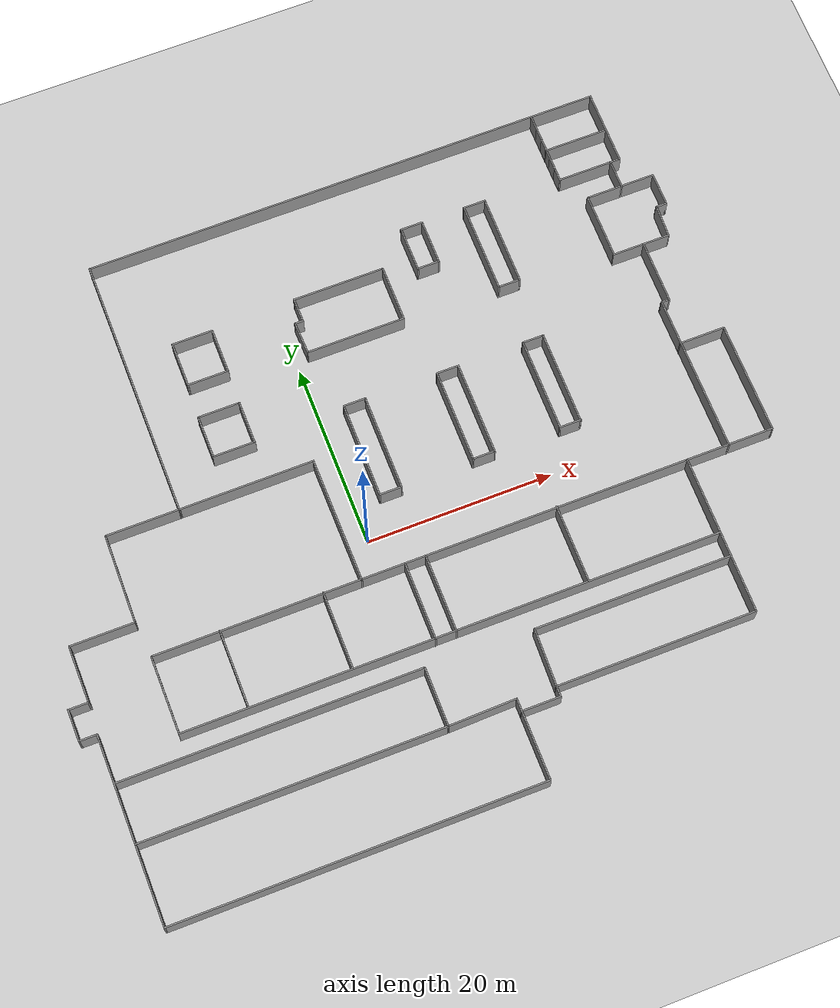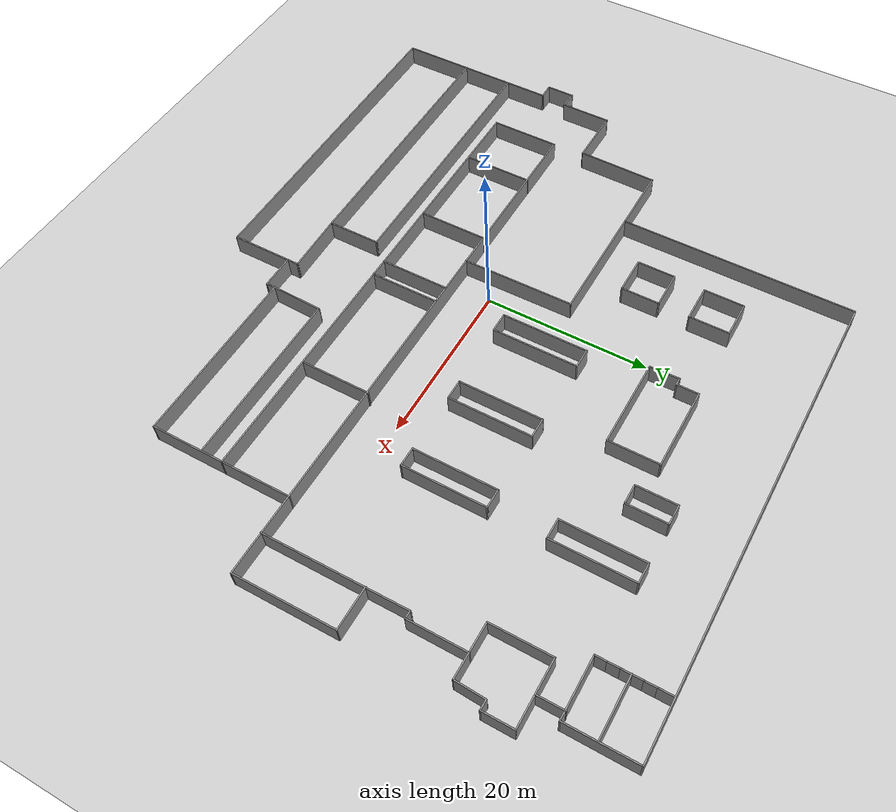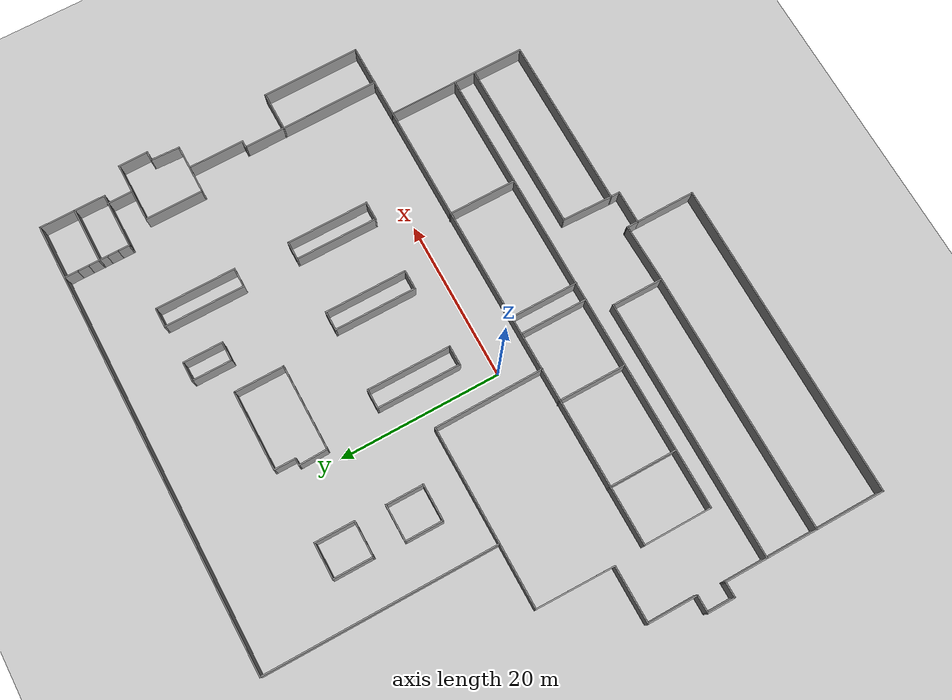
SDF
<sdf version="1.7">
 <world name="default">
  <light name="sun" type="directional">
   <pose>0 0 10 0 -0 0</pose>
   <diffuse>0.8 0.8 0.8 1</diffuse>
   <specular>0.2 0.2 0.2 1</specular>
   <attenuation>
    <range>1000</range>
    <constant>0.9</constant>
    <linear>0.01</linear>
    <quadratic>0.001</quadratic>
   </attenuation>
   <direction>-0.5 0.1 -0.9</direction>
   <spot><inner_angle>0</inner_angle><outer_angle>0</outer_angle><falloff>0</falloff></spot>
  </light>
  <model name="ground_plane">
   <static>1</static>
   <link name="link">
    <collision name="collision">
     <geometry><plane><normal>0 0 1</normal><size>100 100</size></plane></geometry>
     <surface><friction><ode><mu>100</mu><mu2>50</mu2></ode></friction></surface>
    </collision>
    <visual name="visual">
     <cast_shadows>0</cast_shadows>
     <geometry><plane><normal>0 0 1</normal><size>100 100</size></plane></geometry>
     <material>
      <script><uri>file://media/materials/scripts/gazebo.material</uri><name>Gazebo/Grey</name></script>
     </material>
    </visual>
   </link>
  </model>
  <gravity>0 0 -9.8</gravity>
  <magnetic_field>6e-06 2.3e-05 -4.2e-05</magnetic_field>
  <atmosphere type="adiabatic"/>
  <physics type="ode">
   <max_step_size>0.001</max_step_size>
   <real_time_factor>1</real_time_factor>
   <real_time_update_rate>1000</real_time_update_rate>
  </physics>
  <scene><ambient>0.4 0.4 0.4 1</ambient><background>0.7 0.7 0.7 1</background><shadows>1</shadows></scene>
  <audio><device>default</device></audio>
  <spherical_coordinates>
   <surface_model>EARTH_WGS84</surface_model>
   <latitude_deg>0</latitude_deg>
   <longitude_deg>0</longitude_deg>
   <elevation>0</elevation>
   <heading_deg>0</heading_deg>
  </spherical_coordinates>
  <model name="85_4f_sparse_wallbed">
   <pose>4.43341 4 0 0 -0 0</pose>
   <link name="Wall_0">
    <collision name="Wall_0_Collision">
     <geometry><box><size>56.75 0.15 2.5</size></box></geometry>
     <pose>0 0 1.25 0 -0 0</pose>
    </collision>
    <visual name="Wall_0_Visual">
     <pose>0 0 1.25 0 -0 0</pose>
     <geometry><box><size>56.75 0.15 2.5</size></box></geometry>
     <material>
      <script><uri>file://media/materials/scripts/gazebo.material</uri><name>Gazebo/Grey</name></script>
      <ambient>1 1 1 1</ambient>
     </material>
     <meta><layer>0</layer></meta>
    </visual>
    <pose>7.19412 33.9066 0 0 -0 0</pose>
   </link>
   <link name="Wall_1">
    <collision name="Wall_1_Collision">
     <geometry><box><size>8.25 0.15 2.5</size></box></geometry>
     <pose>0 0 1.25 0 -0 0</pose>
    </collision>
    <visual name="Wall_1_Visual">
     <pose>0 0 1.25 0 -0 0</pose>
     <geometry><box><size>8.25 0.15 2.5</size></box></geometry>
     <material>
      <script><uri>file://media/materials/scripts/gazebo.material</uri><name>Gazebo/Grey</name></script>
      <ambient>1 1 1 1</ambient>
     </material>
     <meta><layer>0</layer></meta>
    </visual>
    <pose>35.4941 29.8566 0 0 -0 -1.5708</pose>
   </link>
   <link name="Wall_100">
    <collision name="Wall_100_Collision">
     <geometry><box><size>2.5 0.15 2.5</size></box></geometry>
     <pose>0 0 1.25 0 -0 0</pose>
    </collision>
    <visual name="Wall_100_Visual">
     <pose>0 0 1.25 0 -0 0</pose>
     <geometry><box><size>2.5 0.15 2.5</size></box></geometry>
     <material>
      <script><uri>file://media/materials/scripts/gazebo.material</uri><name>Gazebo/Grey</name></script>
      <ambient>1 1 1 1</ambient>
     </material>
     <meta><layer>0</layer></meta>
    </visual>
    <pose>9.58826 9.76673 0 0 -0 3.14159</pose>
   </link>
   <link name="Wall_107">
    <collision name="Wall_107_Collision">
     <geometry><box><size>10.25 0.15 2.5</size></box></geometry>
     <pose>0 0 1.25 0 -0 0</pose>
    </collision>
    <visual name="Wall_107_Visual">
     <pose>0 0 1.25 0 -0 0</pose>
     <geometry><box><size>10.25 0.15 2.5</size></box></geometry>
     <material>
      <script><uri>file://media/materials/scripts/gazebo.material</uri><name>Gazebo/Grey</name></script>
      <ambient>1 1 1 1</ambient>
     </material>
     <meta><layer>0</layer></meta>
    </visual>
    <pose>17.9421 4.71673 0 0 -0 -1.5708</pose>
   </link>
   <link name="Wall_11">
    <collision name="Wall_11_Collision">
     <geometry><box><size>7 0.15 2.5</size></box></geometry>
     <pose>0 0 1.25 0 -0 0</pose>
    </collision>
    <visual name="Wall_11_Visual">
     <pose>0 0 1.25 0 -0 0</pose>
     <geometry><box><size>7 0.15 2.5</size></box></geometry>
     <material>
      <script><uri>file://media/materials/scripts/gazebo.material</uri><name>Gazebo/Grey</name></script>
      <ambient>1 1 1 1</ambient>
     </material>
     <meta><layer>0</layer></meta>
    </visual>
    <pose>32.0479 29.5726 0 0 -0 3.14159</pose>
   </link>
   <link name="Wall_112">
    <collision name="Wall_112_Collision">
     <geometry><box><size>2.41366 0.15 2.5</size></box></geometry>
     <pose>0 0 1.25 0 -0 0</pose>
    </collision>
    <visual name="Wall_112_Visual">
     <pose>0 0 1.25 0 -0 0</pose>
     <geometry><box><size>2.41366 0.15 2.5</size></box></geometry>
     <material>
      <script><uri>file://media/materials/scripts/gazebo.material</uri><name>Gazebo/Grey</name></script>
      <ambient>1 1 1 1</ambient>
     </material>
     <meta><layer>0</layer></meta>
    </visual>
    <pose>19.0739 -0.333267 0 0 -0 0</pose>
   </link>
   <link name="Wall_115">
    <collision name="Wall_115_Collision">
     <geometry><box><size>2.41366 0.15 2.5</size></box></geometry>
     <pose>0 0 1.25 0 -0 0</pose>
    </collision>
    <visual name="Wall_115_Visual">
     <pose>0 0 1.25 0 -0 0</pose>
     <geometry><box><size>2.41366 0.15 2.5</size></box></geometry>
     <material>
      <script><uri>file://media/materials/scripts/gazebo.material</uri><name>Gazebo/Grey</name></script>
      <ambient>1 1 1 1</ambient>
     </material>
     <meta><layer>0</layer></meta>
    </visual>
    <pose>19.0739 9.76673 0 0 -0 0</pose>
   </link>
   <link name="Wall_116">
    <collision name="Wall_116_Collision">
     <geometry><box><size>10.25 0.15 2.5</size></box></geometry>
     <pose>0 0 1.25 0 -0 0</pose>
    </collision>
    <visual name="Wall_116_Visual">
     <pose>0 0 1.25 0 -0 0</pose>
     <geometry><box><size>10.25 0.15 2.5</size></box></geometry>
     <material>
      <script><uri>file://media/materials/scripts/gazebo.material</uri><name>Gazebo/Grey</name></script>
      <ambient>1 1 1 1</ambient>
     </material>
     <meta><layer>0</layer></meta>
    </visual>
    <pose>20.1785 4.71673 0 0 -0 -1.5708</pose>
   </link>
   <link name="Wall_118">
    <collision name="Wall_118_Collision">
     <geometry><box><size>5 0.15 2.5</size></box></geometry>
     <pose>0 0 1.25 0 -0 0</pose>
    </collision>
    <visual name="Wall_118_Visual">
     <pose>0 0 1.25 0 -0 0</pose>
     <geometry><box><size>5 0.15 2.5</size></box></geometry>
     <material>
      <script><uri>file://media/materials/scripts/gazebo.material</uri><name>Gazebo/Grey</name></script>
      <ambient>1 1 1 1</ambient>
     </material>
     <meta><layer>0</layer></meta>
    </visual>
    <pose>10.8616 23.9762 0 0 -0 -1.5708</pose>
   </link>
   <link name="Wall_119">
    <collision name="Wall_119_Collision">
     <geometry><box><size>2.5 0.15 2.5</size></box></geometry>
     <pose>0 0 1.25 0 -0 0</pose>
    </collision>
    <visual name="Wall_119_Visual">
     <pose>0 0 1.25 0 -0 0</pose>
     <geometry><box><size>2.5 0.15 2.5</size></box></geometry>
     <material>
      <script><uri>file://media/materials/scripts/gazebo.material</uri><name>Gazebo/Grey</name></script>
      <ambient>1 1 1 1</ambient>
     </material>
     <meta><layer>0</layer></meta>
    </visual>
    <pose>12.0366 21.5512 0 0 -0 0</pose>
   </link>
   <link name="Wall_120">
    <collision name="Wall_120_Collision">
     <geometry><box><size>5 0.15 2.5</size></box></geometry>
     <pose>0 0 1.25 0 -0 0</pose>
    </collision>
    <visual name="Wall_120_Visual">
     <pose>0 0 1.25 0 -0 0</pose>
     <geometry><box><size>5 0.15 2.5</size></box></geometry>
     <material>
      <script><uri>file://media/materials/scripts/gazebo.material</uri><name>Gazebo/Grey</name></script>
      <ambient>1 1 1 1</ambient>
     </material>
     <meta><layer>0</layer></meta>
    </visual>
    <pose>13.2116 23.9762 0 0 -0 1.5708</pose>
   </link>
   <link name="Wall_121">
    <collision name="Wall_121_Collision">
     <geometry><box><size>2.5 0.15 2.5</size></box></geometry>
     <pose>0 0 1.25 0 -0 0</pose>
    </collision>
    <visual name="Wall_121_Visual">
     <pose>0 0 1.25 0 -0 0</pose>
     <geometry><box><size>2.5 0.15 2.5</size></box></geometry>
     <material>
      <script><uri>file://media/materials/scripts/gazebo.material</uri><name>Gazebo/Grey</name></script>
      <ambient>1 1 1 1</ambient>
     </material>
     <meta><layer>0</layer></meta>
    </visual>
    <pose>12.0366 26.4012 0 0 -0 3.14159</pose>
   </link>
   <link name="Wall_124">
    <collision name="Wall_124_Collision">
     <geometry><box><size>5 0.15 2.5</size></box></geometry>
     <pose>0 0 1.25 0 -0 0</pose>
    </collision>
    <visual name="Wall_124_Visual">
     <pose>0 0 1.25 0 -0 0</pose>
     <geometry><box><size>5 0.15 2.5</size></box></geometry>
     <material>
      <script><uri>file://media/materials/scripts/gazebo.material</uri><name>Gazebo/Grey</name></script>
      <ambient>1 1 1 1</ambient>
     </material>
     <meta><layer>0</layer></meta>
    </visual>
    <pose>-11.5083 20.2075 0 0 -0 -1.5708</pose>
   </link>
   <link name="Wall_125">
    <collision name="Wall_125_Collision">
     <geometry><box><size>4.5 0.15 2.5</size></box></geometry>
     <pose>0 0 1.25 0 -0 0</pose>
    </collision>
    <visual name="Wall_125_Visual">
     <pose>0 0 1.25 0 -0 0</pose>
     <geometry><box><size>4.5 0.15 2.5</size></box></geometry>
     <material>
      <script><uri>file://media/materials/scripts/gazebo.material</uri><name>Gazebo/Grey</name></script>
      <ambient>1 1 1 1</ambient>
     </material>
     <meta><layer>0</layer></meta>
    </visual>
    <pose>-13.6833 17.7825 0 0 -0 3.14159</pose>
   </link>
   <link name="Wall_127">
    <collision name="Wall_127_Collision">
     <geometry><box><size>5 0.15 2.5</size></box></geometry>
     <pose>0 0 1.25 0 -0 0</pose>
    </collision>
    <visual name="Wall_127_Visual">
     <pose>0 0 1.25 0 -0 0</pose>
     <geometry><box><size>5 0.15 2.5</size></box></geometry>
     <material>
      <script><uri>file://media/materials/scripts/gazebo.material</uri><name>Gazebo/Grey</name></script>
      <ambient>1 1 1 1</ambient>
     </material>
     <meta><layer>0</layer></meta>
    </visual>
    <pose>-15.8583 20.2075 0 0 -0 1.5708</pose>
   </link>
   <link name="Wall_128">
    <collision name="Wall_128_Collision">
     <geometry><box><size>4.5 0.15 2.5</size></box></geometry>
     <pose>0 0 1.25 0 -0 0</pose>
    </collision>
    <visual name="Wall_128_Visual">
     <pose>0 0 1.25 0 -0 0</pose>
     <geometry><box><size>4.5 0.15 2.5</size></box></geometry>
     <material>
      <script><uri>file://media/materials/scripts/gazebo.material</uri><name>Gazebo/Grey</name></script>
      <ambient>1 1 1 1</ambient>
     </material>
     <meta><layer>0</layer></meta>
    </visual>
    <pose>-13.6833 22.6325 0 0 -0 0</pose>
   </link>
   <link name="Wall_13">
    <collision name="Wall_13_Collision">
     <geometry><box><size>28.7814 0.15 2.5</size></box></geometry>
     <pose>0 0 1.25 0 -0 0</pose>
    </collision>
    <visual name="Wall_13_Visual">
     <pose>0 0 1.25 0 -0 0</pose>
     <geometry><box><size>28.7814 0.15 2.5</size></box></geometry>
     <material>
      <script><uri>file://media/materials/scripts/gazebo.material</uri><name>Gazebo/Grey</name></script>
      <ambient>1 1 1 1</ambient>
     </material>
     <meta><layer>0</layer></meta>
    </visual>
    <pose>-21.1216 19.591 0 0 -0 -1.57189</pose>
   </link>
   <link name="Wall_130">
    <collision name="Wall_130_Collision">
     <geometry><box><size>4.75 0.15 2.5</size></box></geometry>
     <pose>0 0 1.25 0 -0 0</pose>
    </collision>
    <visual name="Wall_130_Visual">
     <pose>0 0 1.25 0 -0 0</pose>
     <geometry><box><size>4.75 0.15 2.5</size></box></geometry>
     <material>
      <script><uri>file://media/materials/scripts/gazebo.material</uri><name>Gazebo/Grey</name></script>
      <ambient>1 1 1 1</ambient>
     </material>
     <meta><layer>0</layer></meta>
    </visual>
    <pose>-16.0563 11.7124 0 0 -0 -1.5708</pose>
   </link>
   <link name="Wall_131">
    <collision name="Wall_131_Collision">
     <geometry><box><size>4.6186 0.15 2.5</size></box></geometry>
     <pose>0 0 1.25 0 -0 0</pose>
    </collision>
    <visual name="Wall_131_Visual">
     <pose>0 0 1.25 0 -0 0</pose>
     <geometry><box><size>4.6186 0.15 2.5</size></box></geometry>
     <material>
      <script><uri>file://media/materials/scripts/gazebo.material</uri><name>Gazebo/Grey</name></script>
      <ambient>1 1 1 1</ambient>
     </material>
     <meta><layer>0</layer></meta>
    </visual>
    <pose>-13.822 9.41236 0 0 -0 0</pose>
   </link>
   <link name="Wall_132">
    <collision name="Wall_132_Collision">
     <geometry><box><size>4.75 0.15 2.5</size></box></geometry>
     <pose>0 0 1.25 0 -0 0</pose>
    </collision>
    <visual name="Wall_132_Visual">
     <pose>0 0 1.25 0 -0 0</pose>
     <geometry><box><size>4.75 0.15 2.5</size></box></geometry>
     <material>
      <script><uri>file://media/materials/scripts/gazebo.material</uri><name>Gazebo/Grey</name></script>
      <ambient>1 1 1 1</ambient>
     </material>
     <meta><layer>0</layer></meta>
    </visual>
    <pose>-11.6114 11.7124 0 0 -0 1.5708</pose>
   </link>
   <link name="Wall_133">
    <collision name="Wall_133_Collision">
     <geometry><box><size>4.6186 0.15 2.5</size></box></geometry>
     <pose>0 0 1.25 0 -0 0</pose>
    </collision>
    <visual name="Wall_133_Visual">
     <pose>0 0 1.25 0 -0 0</pose>
     <geometry><box><size>4.6186 0.15 2.5</size></box></geometry>
     <material>
      <script><uri>file://media/materials/scripts/gazebo.material</uri><name>Gazebo/Grey</name></script>
      <ambient>1 1 1 1</ambient>
     </material>
     <meta><layer>0</layer></meta>
    </visual>
    <pose>-13.822 14.0124 0 0 -0 3.14159</pose>
   </link>
   <link name="Wall_135">
    <collision name="Wall_135_Collision">
     <geometry><box><size>2.5 0.15 2.5</size></box></geometry>
     <pose>0 0 1.25 0 -0 0</pose>
    </collision>
    <visual name="Wall_135_Visual">
     <pose>0 0 1.25 0 -0 0</pose>
     <geometry><box><size>2.5 0.15 2.5</size></box></geometry>
     <material>
      <script><uri>file://media/materials/scripts/gazebo.material</uri><name>Gazebo/Grey</name></script>
      <ambient>1 1 1 1</ambient>
     </material>
     <meta><layer>0</layer></meta>
    </visual>
    <pose>-0.602463 -0.525696 0 0 -0 0</pose>
   </link>
   <link name="Wall_136">
    <collision name="Wall_136_Collision">
     <geometry><box><size>10.5 0.15 2.5</size></box></geometry>
     <pose>0 0 1.25 0 -0 0</pose>
    </collision>
    <visual name="Wall_136_Visual">
     <pose>0 0 1.25 0 -0 0</pose>
     <geometry><box><size>10.5 0.15 2.5</size></box></geometry>
     <material>
      <script><uri>file://media/materials/scripts/gazebo.material</uri><name>Gazebo/Grey</name></script>
      <ambient>1 1 1 1</ambient>
     </material>
     <meta><layer>0</layer></meta>
    </visual>
    <pose>0.572537 4.6493 0 0 -0 1.5708</pose>
   </link>
   <link name="Wall_137">
    <collision name="Wall_137_Collision">
     <geometry><box><size>2.5 0.15 2.5</size></box></geometry>
     <pose>0 0 1.25 0 -0 0</pose>
    </collision>
    <visual name="Wall_137_Visual">
     <pose>0 0 1.25 0 -0 0</pose>
     <geometry><box><size>2.5 0.15 2.5</size></box></geometry>
     <material>
      <script><uri>file://media/materials/scripts/gazebo.material</uri><name>Gazebo/Grey</name></script>
      <ambient>1 1 1 1</ambient>
     </material>
     <meta><layer>0</layer></meta>
    </visual>
    <pose>-0.602463 9.82431 0 0 -0 3.14159</pose>
   </link>
   <link name="Wall_138">
    <collision name="Wall_138_Collision">
     <geometry><box><size>10.5 0.15 2.5</size></box></geometry>
     <pose>0 0 1.25 0 -0 0</pose>
    </collision>
    <visual name="Wall_138_Visual">
     <pose>0 0 1.25 0 -0 0</pose>
     <geometry><box><size>10.5 0.15 2.5</size></box></geometry>
     <material>
      <script><uri>file://media/materials/scripts/gazebo.material</uri><name>Gazebo/Grey</name></script>
      <ambient>1 1 1 1</ambient>
     </material>
     <meta><layer>0</layer></meta>
    </visual>
    <pose>-1.77746 4.6493 0 0 -0 -1.5708</pose>
   </link>
   <link name="Wall_14">
    <collision name="Wall_14_Collision">
     <geometry><box><size>14.5314 0.15 2.5</size></box></geometry>
     <pose>0 0 1.25 0 -0 0</pose>
    </collision>
    <visual name="Wall_14_Visual">
     <pose>0 0 1.25 0 -0 0</pose>
     <geometry><box><size>14.5314 0.15 2.5</size></box></geometry>
     <material>
      <script><uri>file://media/materials/scripts/gazebo.material</uri><name>Gazebo/Grey</name></script>
      <ambient>1 1 1 1</ambient>
     </material>
     <meta><layer>0</layer></meta>
    </visual>
    <pose>-13.9466 5.29096 0 0 -0 0.002181</pose>
   </link>
   <link name="Wall_15">
    <collision name="Wall_15_Collision">
     <geometry><box><size>13.7495 0.15 2.5</size></box></geometry>
     <pose>0 0 1.25 0 -0 0</pose>
    </collision>
    <visual name="Wall_15_Visual">
     <pose>0 0 1.25 0 -0 0</pose>
     <geometry><box><size>13.7495 0.15 2.5</size></box></geometry>
     <material>
      <script><uri>file://media/materials/scripts/gazebo.material</uri><name>Gazebo/Grey</name></script>
      <ambient>1 1 1 1</ambient>
     </material>
     <meta><layer>0</layer></meta>
    </visual>
    <pose>-6.70238 -1.49288 0 0 -0 -1.56293</pose>
   </link>
   <link name="Wall_16">
    <collision name="Wall_16_Collision">
     <geometry><box><size>40 0.15 2.5</size></box></geometry>
     <pose>0 0 1.25 0 -0 0</pose>
    </collision>
    <visual name="Wall_16_Visual">
     <pose>0 0 1.25 0 -0 0</pose>
     <geometry><box><size>40 0.15 2.5</size></box></geometry>
     <material>
      <script><uri>file://media/materials/scripts/gazebo.material</uri><name>Gazebo/Grey</name></script>
      <ambient>1 1 1 1</ambient>
     </material>
     <meta><layer>0</layer></meta>
    </visual>
    <pose>13.2761 -8.25672 0 0 -0 0</pose>
   </link>
   <link name="Wall_17">
    <collision name="Wall_17_Collision">
     <geometry><box><size>17.2494 0.15 2.5</size></box></geometry>
     <pose>0 0 1.25 0 -0 0</pose>
    </collision>
    <visual name="Wall_17_Visual">
     <pose>0 0 1.25 0 -0 0</pose>
     <geometry><box><size>17.2494 0.15 2.5</size></box></geometry>
     <material>
      <script><uri>file://media/materials/scripts/gazebo.material</uri><name>Gazebo/Grey</name></script>
      <ambient>1 1 1 1</ambient>
     </material>
     <meta><layer>0</layer></meta>
    </visual>
    <pose>33.1476 0.257124 0 0 -0 1.57705</pose>
   </link>
   <link name="Wall_18">
    <collision name="Wall_18_Collision">
     <geometry><box><size>1 0.15 2.5</size></box></geometry>
     <pose>0 0 1.25 0 -0 0</pose>
    </collision>
    <visual name="Wall_18_Visual">
     <pose>0 0 1.25 0 -0 0</pose>
     <geometry><box><size>1 0.15 2.5</size></box></geometry>
     <material>
      <script><uri>file://media/materials/scripts/gazebo.material</uri><name>Gazebo/Grey</name></script>
      <ambient>1 1 1 1</ambient>
     </material>
     <meta><layer>0</layer></meta>
    </visual>
    <pose>33.5191 8.80664 0 0 -0 0</pose>
   </link>
   <link name="Wall_19">
    <collision name="Wall_19_Collision">
     <geometry><box><size>7 0.15 2.5</size></box></geometry>
     <pose>0 0 1.25 0 -0 0</pose>
    </collision>
    <visual name="Wall_19_Visual">
     <pose>0 0 1.25 0 -0 0</pose>
     <geometry><box><size>7 0.15 2.5</size></box></geometry>
     <material>
      <script><uri>file://media/materials/scripts/gazebo.material</uri><name>Gazebo/Grey</name></script>
      <ambient>1 1 1 1</ambient>
     </material>
     <meta><layer>0</layer></meta>
    </visual>
    <pose>33.9441 12.2316 0 0 -0 1.5708</pose>
   </link>
   <link name="Wall_20">
    <collision name="Wall_20_Collision">
     <geometry><box><size>3.5 0.15 2.5</size></box></geometry>
     <pose>0 0 1.25 0 -0 0</pose>
    </collision>
    <visual name="Wall_20_Visual">
     <pose>0 0 1.25 0 -0 0</pose>
     <geometry><box><size>3.5 0.15 2.5</size></box></geometry>
     <material>
      <script><uri>file://media/materials/scripts/gazebo.material</uri><name>Gazebo/Grey</name></script>
      <ambient>1 1 1 1</ambient>
     </material>
     <meta><layer>0</layer></meta>
    </visual>
    <pose>32.2691 15.6566 0 0 -0 3.14159</pose>
   </link>
   <link name="Wall_21">
    <collision name="Wall_21_Collision">
     <geometry><box><size>7.26773 0.15 2.5</size></box></geometry>
     <pose>0 0 1.25 0 -0 0</pose>
    </collision>
    <visual name="Wall_21_Visual">
     <pose>0 0 1.25 0 -0 0</pose>
     <geometry><box><size>7.26773 0.15 2.5</size></box></geometry>
     <material>
      <script><uri>file://media/materials/scripts/gazebo.material</uri><name>Gazebo/Grey</name></script>
      <ambient>1 1 1 1</ambient>
     </material>
     <meta><layer>0</layer></meta>
    </visual>
    <pose>30.5941 19.2155 0 0 -0 1.5708</pose>
   </link>
   <link name="Wall_22">
    <collision name="Wall_22_Collision">
     <geometry><box><size>4 0.15 2.5</size></box></geometry>
     <pose>0 0 1.25 0 -0 0</pose>
    </collision>
    <visual name="Wall_22_Visual">
     <pose>0 0 1.25 0 -0 0</pose>
     <geometry><box><size>4 0.15 2.5</size></box></geometry>
     <material>
      <script><uri>file://media/materials/scripts/gazebo.material</uri><name>Gazebo/Grey</name></script>
      <ambient>1 1 1 1</ambient>
     </material>
     <meta><layer>0</layer></meta>
    </visual>
    <pose>32.5191 22.7744 0 0 -0 0</pose>
   </link>
   <link name="Wall_25">
    <collision name="Wall_25_Collision">
     <geometry><box><size>3.23227 0.15 2.5</size></box></geometry>
     <pose>0 0 1.25 0 -0 0</pose>
    </collision>
    <visual name="Wall_25_Visual">
     <pose>0 0 1.25 0 -0 0</pose>
     <geometry><box><size>3.23227 0.15 2.5</size></box></geometry>
     <material>
      <script><uri>file://media/materials/scripts/gazebo.material</uri><name>Gazebo/Grey</name></script>
      <ambient>1 1 1 1</ambient>
     </material>
     <meta><layer>0</layer></meta>
    </visual>
    <pose>34.4441 24.3155 0 0 -0 1.5708</pose>
   </link>
   <link name="Wall_27">
    <collision name="Wall_27_Collision">
     <geometry><box><size>3 0.15 2.5</size></box></geometry>
     <pose>0 0 1.25 0 -0 0</pose>
    </collision>
    <visual name="Wall_27_Visual">
     <pose>0 0 1.25 0 -0 0</pose>
     <geometry><box><size>3 0.15 2.5</size></box></geometry>
     <material>
      <script><uri>file://media/materials/scripts/gazebo.material</uri><name>Gazebo/Grey</name></script>
      <ambient>1 1 1 1</ambient>
     </material>
     <meta><layer>0</layer></meta>
    </visual>
    <pose>35.3691 15.6566 0 0 -0 0</pose>
   </link>
   <link name="Wall_35">
    <collision name="Wall_35_Collision">
     <geometry><box><size>3.75 0.15 2.5</size></box></geometry>
     <pose>0 0 1.25 0 -0 0</pose>
    </collision>
    <visual name="Wall_35_Visual">
     <pose>0 0 1.25 0 -0 0</pose>
     <geometry><box><size>3.75 0.15 2.5</size></box></geometry>
     <material>
      <script><uri>file://media/materials/scripts/gazebo.material</uri><name>Gazebo/Grey</name></script>
      <ambient>1 1 1 1</ambient>
     </material>
     <meta><layer>0</layer></meta>
    </visual>
    <pose>36.2441 22.7744 0 0 -0 0</pose>
   </link>
   <link name="Wall_36">
    <collision name="Wall_36_Collision">
     <geometry><box><size>3.75 0.15 2.5</size></box></geometry>
     <pose>0 0 1.25 0 -0 0</pose>
    </collision>
    <visual name="Wall_36_Visual">
     <pose>0 0 1.25 0 -0 0</pose>
     <geometry><box><size>3.75 0.15 2.5</size></box></geometry>
     <material>
      <script><uri>file://media/materials/scripts/gazebo.material</uri><name>Gazebo/Grey</name></script>
      <ambient>1 1 1 1</ambient>
     </material>
     <meta><layer>0</layer></meta>
    </visual>
    <pose>38.0441 20.9744 0 0 -0 -1.5708</pose>
   </link>
   <link name="Wall_37">
    <collision name="Wall_37_Collision">
     <geometry><box><size>1.25 0.15 2.5</size></box></geometry>
     <pose>0 0 1.25 0 -0 0</pose>
    </collision>
    <visual name="Wall_37_Visual">
     <pose>0 0 1.25 0 -0 0</pose>
     <geometry><box><size>1.25 0.15 2.5</size></box></geometry>
     <material>
      <script><uri>file://media/materials/scripts/gazebo.material</uri><name>Gazebo/Grey</name></script>
      <ambient>1 1 1 1</ambient>
     </material>
     <meta><layer>0</layer></meta>
    </visual>
    <pose>37.4941 19.1744 0 0 -0 3.14159</pose>
   </link>
   <link name="Wall_38">
    <collision name="Wall_38_Collision">
     <geometry><box><size>3.67093 0.15 2.5</size></box></geometry>
     <pose>0 0 1.25 0 -0 0</pose>
    </collision>
    <visual name="Wall_38_Visual">
     <pose>0 0 1.25 0 -0 0</pose>
     <geometry><box><size>3.67093 0.15 2.5</size></box></geometry>
     <material>
      <script><uri>file://media/materials/scripts/gazebo.material</uri><name>Gazebo/Grey</name></script>
      <ambient>1 1 1 1</ambient>
     </material>
     <meta><layer>0</layer></meta>
    </visual>
    <pose>36.8691 17.4155 0 0 -0 -1.61341</pose>
   </link>
   <link name="Wall_4">
    <collision name="Wall_4_Collision">
     <geometry><box><size>7 0.15 2.5</size></box></geometry>
     <pose>0 0 1.25 0 -0 0</pose>
    </collision>
    <visual name="Wall_4_Visual">
     <pose>0 0 1.25 0 -0 0</pose>
     <geometry><box><size>7 0.15 2.5</size></box></geometry>
     <material>
      <script><uri>file://media/materials/scripts/gazebo.material</uri><name>Gazebo/Grey</name></script>
      <ambient>1 1 1 1</ambient>
     </material>
     <meta><layer>0</layer></meta>
    </visual>
    <pose>32.0691 25.8066 0 0 -0 3.14159</pose>
   </link>
   <link name="Wall_40">
    <collision name="Wall_40_Collision">
     <geometry><box><size>5 0.15 2.5</size></box></geometry>
     <pose>0 0 1.25 0 -0 0</pose>
    </collision>
    <visual name="Wall_40_Visual">
     <pose>0 0 1.25 0 -0 0</pose>
     <geometry><box><size>5 0.15 2.5</size></box></geometry>
     <material>
      <script><uri>file://media/materials/scripts/gazebo.material</uri><name>Gazebo/Grey</name></script>
      <ambient>1 1 1 1</ambient>
     </material>
     <meta><layer>0</layer></meta>
    </visual>
    <pose>35.5175 3.82548 0 0 -0 0</pose>
   </link>
   <link name="Wall_41">
    <collision name="Wall_41_Collision">
     <geometry><box><size>12.2274 0.15 2.5</size></box></geometry>
     <pose>0 0 1.25 0 -0 0</pose>
    </collision>
    <visual name="Wall_41_Visual">
     <pose>0 0 1.25 0 -0 0</pose>
     <geometry><box><size>12.2274 0.15 2.5</size></box></geometry>
     <material>
      <script><uri>file://media/materials/scripts/gazebo.material</uri><name>Gazebo/Grey</name></script>
      <ambient>1 1 1 1</ambient>
     </material>
     <meta><layer>0</layer></meta>
    </visual>
    <pose>37.9868 -2.21306 0 0 -0 -1.56346</pose>
   </link>
   <link name="Wall_42">
    <collision name="Wall_42_Collision">
     <geometry><box><size>5 0.15 2.5</size></box></geometry>
     <pose>0 0 1.25 0 -0 0</pose>
    </collision>
    <visual name="Wall_42_Visual">
     <pose>0 0 1.25 0 -0 0</pose>
     <geometry><box><size>5 0.15 2.5</size></box></geometry>
     <material>
      <script><uri>file://media/materials/scripts/gazebo.material</uri><name>Gazebo/Grey</name></script>
      <ambient>1 1 1 1</ambient>
     </material>
     <meta><layer>0</layer></meta>
    </visual>
    <pose>35.6239 -8.25159 0 0 -0 3.14159</pose>
   </link>
   <link name="Wall_45">
    <collision name="Wall_45_Collision">
     <geometry><box><size>22.25 0.15 2.5</size></box></geometry>
     <pose>0 0 1.25 0 -0 0</pose>
    </collision>
    <visual name="Wall_45_Visual">
     <pose>0 0 1.25 0 -0 0</pose>
     <geometry><box><size>22.25 0.15 2.5</size></box></geometry>
     <material>
      <script><uri>file://media/materials/scripts/gazebo.material</uri><name>Gazebo/Grey</name></script>
      <ambient>1 1 1 1</ambient>
     </material>
     <meta><layer>0</layer></meta>
    </visual>
    <pose>-17.6989 -8.25672 0 0 -0 3.14159</pose>
   </link>
   <link name="Wall_46">
    <collision name="Wall_46_Collision">
     <geometry><box><size>8.5 0.15 2.5</size></box></geometry>
     <pose>0 0 1.25 0 -0 0</pose>
    </collision>
    <visual name="Wall_46_Visual">
     <pose>0 0 1.25 0 -0 0</pose>
     <geometry><box><size>8.5 0.15 2.5</size></box></geometry>
     <material>
      <script><uri>file://media/materials/scripts/gazebo.material</uri><name>Gazebo/Grey</name></script>
      <ambient>1 1 1 1</ambient>
     </material>
     <meta><layer>0</layer></meta>
    </visual>
    <pose>-28.7489 -12.4317 0 0 -0 -1.5708</pose>
   </link>
   <link name="Wall_47">
    <collision name="Wall_47_Collision">
     <geometry><box><size>57.5 0.15 2.5</size></box></geometry>
     <pose>0 0 1.25 0 -0 0</pose>
    </collision>
    <visual name="Wall_47_Visual">
     <pose>0 0 1.25 0 -0 0</pose>
     <geometry><box><size>57.5 0.15 2.5</size></box></geometry>
     <material>
      <script><uri>file://media/materials/scripts/gazebo.material</uri><name>Gazebo/Grey</name></script>
      <ambient>1 1 1 1</ambient>
     </material>
     <meta><layer>0</layer></meta>
    </visual>
    <pose>-0.073876 -16.6067 0 0 -0 0</pose>
   </link>
   <link name="Wall_48">
    <collision name="Wall_48_Collision">
     <geometry><box><size>8.5 0.15 2.5</size></box></geometry>
     <pose>0 0 1.25 0 -0 0</pose>
    </collision>
    <visual name="Wall_48_Visual">
     <pose>0 0 1.25 0 -0 0</pose>
     <geometry><box><size>8.5 0.15 2.5</size></box></geometry>
     <material>
      <script><uri>file://media/materials/scripts/gazebo.material</uri><name>Gazebo/Grey</name></script>
      <ambient>1 1 1 1</ambient>
     </material>
     <meta><layer>0</layer></meta>
    </visual>
    <pose>28.6011 -12.4317 0 0 -0 1.5708</pose>
   </link>
   <link name="Wall_5">
    <collision name="Wall_5_Collision">
     <geometry><box><size>1.5 0.15 2.5</size></box></geometry>
     <pose>0 0 1.25 0 -0 0</pose>
    </collision>
    <visual name="Wall_5_Visual">
     <pose>0 0 1.25 0 -0 0</pose>
     <geometry><box><size>1.5 0.15 2.5</size></box></geometry>
     <material>
      <script><uri>file://media/materials/scripts/gazebo.material</uri><name>Gazebo/Grey</name></script>
      <ambient>1 1 1 1</ambient>
     </material>
     <meta><layer>0</layer></meta>
    </visual>
    <pose>28.6441 26.4816 0 0 -0 1.5708</pose>
   </link>
   <link name="Wall_50">
    <collision name="Wall_50_Collision">
     <geometry><box><size>8.5 0.15 2.5</size></box></geometry>
     <pose>0 0 1.25 0 -0 0</pose>
    </collision>
    <visual name="Wall_50_Visual">
     <pose>0 0 1.25 0 -0 0</pose>
     <geometry><box><size>8.5 0.15 2.5</size></box></geometry>
     <material>
      <script><uri>file://media/materials/scripts/gazebo.material</uri><name>Gazebo/Grey</name></script>
      <ambient>1 1 1 1</ambient>
     </material>
     <meta><layer>0</layer></meta>
    </visual>
    <pose>-2.02252 -12.4746 0 0 -0 1.5708</pose>
   </link>
   <link name="Wall_52">
    <collision name="Wall_52_Collision">
     <geometry><box><size>8.5 0.15 2.5</size></box></geometry>
     <pose>0 0 1.25 0 -0 0</pose>
    </collision>
    <visual name="Wall_52_Visual">
     <pose>0 0 1.25 0 -0 0</pose>
     <geometry><box><size>8.5 0.15 2.5</size></box></geometry>
     <material>
      <script><uri>file://media/materials/scripts/gazebo.material</uri><name>Gazebo/Grey</name></script>
      <ambient>1 1 1 1</ambient>
     </material>
     <meta><layer>0</layer></meta>
    </visual>
    <pose>0.18892 -12.4746 0 0 -0 1.5708</pose>
   </link>
   <link name="Wall_54">
    <collision name="Wall_54_Collision">
     <geometry><box><size>8.5 0.15 2.5</size></box></geometry>
     <pose>0 0 1.25 0 -0 0</pose>
    </collision>
    <visual name="Wall_54_Visual">
     <pose>0 0 1.25 0 -0 0</pose>
     <geometry><box><size>8.5 0.15 2.5</size></box></geometry>
     <material>
      <script><uri>file://media/materials/scripts/gazebo.material</uri><name>Gazebo/Grey</name></script>
      <ambient>1 1 1 1</ambient>
     </material>
     <meta><layer>0</layer></meta>
    </visual>
    <pose>14.3492 -12.3319 0 0 -0 1.5708</pose>
   </link>
   <link name="Wall_56">
    <collision name="Wall_56_Collision">
     <geometry><box><size>8.5 0.15 2.5</size></box></geometry>
     <pose>0 0 1.25 0 -0 0</pose>
    </collision>
    <visual name="Wall_56_Visual">
     <pose>0 0 1.25 0 -0 0</pose>
     <geometry><box><size>8.5 0.15 2.5</size></box></geometry>
     <material>
      <script><uri>file://media/materials/scripts/gazebo.material</uri><name>Gazebo/Grey</name></script>
      <ambient>1 1 1 1</ambient>
     </material>
     <meta><layer>0</layer></meta>
    </visual>
    <pose>-21.5688 -12.4069 0 0 -0 -1.5708</pose>
   </link>
   <link name="Wall_58">
    <collision name="Wall_58_Collision">
     <geometry><box><size>8.5 0.15 2.5</size></box></geometry>
     <pose>0 0 1.25 0 -0 0</pose>
    </collision>
    <visual name="Wall_58_Visual">
     <pose>0 0 1.25 0 -0 0</pose>
     <geometry><box><size>8.5 0.15 2.5</size></box></geometry>
     <material>
      <script><uri>file://media/materials/scripts/gazebo.material</uri><name>Gazebo/Grey</name></script>
      <ambient>1 1 1 1</ambient>
     </material>
     <meta><layer>0</layer></meta>
    </visual>
    <pose>-10.6899 -12.3712 0 0 -0 -1.5708</pose>
   </link>
   <link name="Wall_6">
    <collision name="Wall_6_Collision">
     <geometry><box><size>1.5 0.15 2.5</size></box></geometry>
     <pose>0 0 1.25 0 -0 0</pose>
    </collision>
    <visual name="Wall_6_Visual">
     <pose>0 0 1.25 0 -0 0</pose>
     <geometry><box><size>1.5 0.15 2.5</size></box></geometry>
     <material>
      <script><uri>file://media/materials/scripts/gazebo.material</uri><name>Gazebo/Grey</name></script>
      <ambient>1 1 1 1</ambient>
     </material>
     <meta><layer>0</layer></meta>
    </visual>
    <pose>28.6441 27.8316 0 0 -0 1.5708</pose>
   </link>
   <link name="Wall_60">
    <collision name="Wall_60_Collision">
     <geometry><box><size>9 0.15 2.5</size></box></geometry>
     <pose>0 0 1.25 0 -0 0</pose>
    </collision>
    <visual name="Wall_60_Visual">
     <pose>0 0 1.25 0 -0 0</pose>
     <geometry><box><size>9 0.15 2.5</size></box></geometry>
     <material>
      <script><uri>file://media/materials/scripts/gazebo.material</uri><name>Gazebo/Grey</name></script>
      <ambient>1 1 1 1</ambient>
     </material>
     <meta><layer>0</layer></meta>
    </visual>
    <pose>28.6011 -21.0317 0 0 -0 -1.5708</pose>
   </link>
   <link name="Wall_61">
    <collision name="Wall_61_Collision">
     <geometry><box><size>21.5 0.15 2.5</size></box></geometry>
     <pose>0 0 1.25 0 -0 0</pose>
    </collision>
    <visual name="Wall_61_Visual">
     <pose>0 0 1.25 0 -0 0</pose>
     <geometry><box><size>21.5 0.15 2.5</size></box></geometry>
     <material>
      <script><uri>file://media/materials/scripts/gazebo.material</uri><name>Gazebo/Grey</name></script>
      <ambient>1 1 1 1</ambient>
     </material>
     <meta><layer>0</layer></meta>
    </visual>
    <pose>17.9261 -25.4567 0 0 -0 3.14159</pose>
   </link>
   <link name="Wall_62">
    <collision name="Wall_62_Collision">
     <geometry><box><size>1.25 0.15 2.5</size></box></geometry>
     <pose>0 0 1.25 0 -0 0</pose>
    </collision>
    <visual name="Wall_62_Visual">
     <pose>0 0 1.25 0 -0 0</pose>
     <geometry><box><size>1.25 0.15 2.5</size></box></geometry>
     <material>
      <script><uri>file://media/materials/scripts/gazebo.material</uri><name>Gazebo/Grey</name></script>
      <ambient>1 1 1 1</ambient>
     </material>
     <meta><layer>0</layer></meta>
    </visual>
    <pose>7.25112 -26.0067 0 0 -0 -1.5708</pose>
   </link>
   <link name="Wall_63">
    <collision name="Wall_63_Collision">
     <geometry><box><size>4.25 0.15 2.5</size></box></geometry>
     <pose>0 0 1.25 0 -0 0</pose>
    </collision>
    <visual name="Wall_63_Visual">
     <pose>0 0 1.25 0 -0 0</pose>
     <geometry><box><size>4.25 0.15 2.5</size></box></geometry>
     <material>
      <script><uri>file://media/materials/scripts/gazebo.material</uri><name>Gazebo/Grey</name></script>
      <ambient>1 1 1 1</ambient>
     </material>
     <meta><layer>0</layer></meta>
    </visual>
    <pose>5.20112 -26.5567 0 0 -0 3.14159</pose>
   </link>
   <link name="Wall_64">
    <collision name="Wall_64_Collision">
     <geometry><box><size>7.5 0.15 2.5</size></box></geometry>
     <pose>0 0 1.25 0 -0 0</pose>
    </collision>
    <visual name="Wall_64_Visual">
     <pose>0 0 1.25 0 -0 0</pose>
     <geometry><box><size>7.5 0.15 2.5</size></box></geometry>
     <material>
      <script><uri>file://media/materials/scripts/gazebo.material</uri><name>Gazebo/Grey</name></script>
      <ambient>1 1 1 1</ambient>
     </material>
     <meta><layer>0</layer></meta>
    </visual>
    <pose>3.15112 -30.2317 0 0 -0 -1.5708</pose>
   </link>
   <link name="Wall_65">
    <collision name="Wall_65_Collision">
     <geometry><box><size>39.5 0.15 2.5</size></box></geometry>
     <pose>0 0 1.25 0 -0 0</pose>
    </collision>
    <visual name="Wall_65_Visual">
     <pose>0 0 1.25 0 -0 0</pose>
     <geometry><box><size>39.5 0.15 2.5</size></box></geometry>
     <material>
      <script><uri>file://media/materials/scripts/gazebo.material</uri><name>Gazebo/Grey</name></script>
      <ambient>1 1 1 1</ambient>
     </material>
     <meta><layer>0</layer></meta>
    </visual>
    <pose>-16.5239 -33.9067 0 0 -0 3.14159</pose>
   </link>
   <link name="Wall_66">
    <collision name="Wall_66_Collision">
     <geometry><box><size>20.25 0.15 2.5</size></box></geometry>
     <pose>0 0 1.25 0 -0 0</pose>
    </collision>
    <visual name="Wall_66_Visual">
     <pose>0 0 1.25 0 -0 0</pose>
     <geometry><box><size>20.25 0.15 2.5</size></box></geometry>
     <material>
      <script><uri>file://media/materials/scripts/gazebo.material</uri><name>Gazebo/Grey</name></script>
      <ambient>1 1 1 1</ambient>
     </material>
     <meta><layer>0</layer></meta>
    </visual>
    <pose>-36.1989 -23.8567 0 0 -0 1.5708</pose>
   </link>
   <link name="Wall_67">
    <collision name="Wall_67_Collision">
     <geometry><box><size>2 0.15 2.5</size></box></geometry>
     <pose>0 0 1.25 0 -0 0</pose>
    </collision>
    <visual name="Wall_67_Visual">
     <pose>0 0 1.25 0 -0 0</pose>
     <geometry><box><size>2 0.15 2.5</size></box></geometry>
     <material>
      <script><uri>file://media/materials/scripts/gazebo.material</uri><name>Gazebo/Grey</name></script>
      <ambient>1 1 1 1</ambient>
     </material>
     <meta><layer>0</layer></meta>
    </visual>
    <pose>-37.1239 -13.8067 0 0 -0 3.14159</pose>
   </link>
   <link name="Wall_68">
    <collision name="Wall_68_Collision">
     <geometry><box><size>3.5 0.15 2.5</size></box></geometry>
     <pose>0 0 1.25 0 -0 0</pose>
    </collision>
    <visual name="Wall_68_Visual">
     <pose>0 0 1.25 0 -0 0</pose>
     <geometry><box><size>3.5 0.15 2.5</size></box></geometry>
     <material>
      <script><uri>file://media/materials/scripts/gazebo.material</uri><name>Gazebo/Grey</name></script>
      <ambient>1 1 1 1</ambient>
     </material>
     <meta><layer>0</layer></meta>
    </visual>
    <pose>-38.0489 -12.1317 0 0 -0 1.5708</pose>
   </link>
   <link name="Wall_69">
    <collision name="Wall_69_Collision">
     <geometry><box><size>2.25 0.15 2.5</size></box></geometry>
     <pose>0 0 1.25 0 -0 0</pose>
    </collision>
    <visual name="Wall_69_Visual">
     <pose>0 0 1.25 0 -0 0</pose>
     <geometry><box><size>2.25 0.15 2.5</size></box></geometry>
     <material>
      <script><uri>file://media/materials/scripts/gazebo.material</uri><name>Gazebo/Grey</name></script>
      <ambient>1 1 1 1</ambient>
     </material>
     <meta><layer>0</layer></meta>
    </visual>
    <pose>-36.9989 -10.4567 0 0 -0 0</pose>
   </link>
   <link name="Wall_7">
    <collision name="Wall_7_Collision">
     <geometry><box><size>2.5 0.15 2.5</size></box></geometry>
     <pose>0 0 1.25 0 -0 0</pose>
    </collision>
    <visual name="Wall_7_Visual">
     <pose>0 0 1.25 0 -0 0</pose>
     <geometry><box><size>2.5 0.15 2.5</size></box></geometry>
     <material>
      <script><uri>file://media/materials/scripts/gazebo.material</uri><name>Gazebo/Grey</name></script>
      <ambient>1 1 1 1</ambient>
     </material>
     <meta><layer>0</layer></meta>
    </visual>
    <pose>28.6441 29.6816 0 0 -0 1.5708</pose>
   </link>
   <link name="Wall_70">
    <collision name="Wall_70_Collision">
     <geometry><box><size>6.25 0.15 2.5</size></box></geometry>
     <pose>0 0 1.25 0 -0 0</pose>
    </collision>
    <visual name="Wall_70_Visual">
     <pose>0 0 1.25 0 -0 0</pose>
     <geometry><box><size>6.25 0.15 2.5</size></box></geometry>
     <material>
      <script><uri>file://media/materials/scripts/gazebo.material</uri><name>Gazebo/Grey</name></script>
      <ambient>1 1 1 1</ambient>
     </material>
     <meta><layer>0</layer></meta>
    </visual>
    <pose>-35.9489 -7.40672 0 0 -0 1.5708</pose>
   </link>
   <link name="Wall_71">
    <collision name="Wall_71_Collision">
     <geometry><box><size>7 0.15 2.5</size></box></geometry>
     <pose>0 0 1.25 0 -0 0</pose>
    </collision>
    <visual name="Wall_71_Visual">
     <pose>0 0 1.25 0 -0 0</pose>
     <geometry><box><size>7 0.15 2.5</size></box></geometry>
     <material>
      <script><uri>file://media/materials/scripts/gazebo.material</uri><name>Gazebo/Grey</name></script>
      <ambient>1 1 1 1</ambient>
     </material>
     <meta><layer>0</layer></meta>
    </visual>
    <pose>-32.5239 -4.35672 0 0 -0 0</pose>
   </link>
   <link name="Wall_72">
    <collision name="Wall_72_Collision">
     <geometry><box><size>9.78306 0.15 2.5</size></box></geometry>
     <pose>0 0 1.25 0 -0 0</pose>
    </collision>
    <visual name="Wall_72_Visual">
     <pose>0 0 1.25 0 -0 0</pose>
     <geometry><box><size>9.78306 0.15 2.5</size></box></geometry>
     <material>
      <script><uri>file://media/materials/scripts/gazebo.material</uri><name>Gazebo/Grey</name></script>
      <ambient>1 1 1 1</ambient>
     </material>
     <meta><layer>0</layer></meta>
    </visual>
    <pose>-29.0274 0.459274 0 0 -0 1.55595</pose>
   </link>
   <link name="Wall_73">
    <collision name="Wall_73_Collision">
     <geometry><box><size>8 0.15 2.5</size></box></geometry>
     <pose>0 0 1.25 0 -0 0</pose>
    </collision>
    <visual name="Wall_73_Visual">
     <pose>0 0 1.25 0 -0 0</pose>
     <geometry><box><size>8 0.15 2.5</size></box></geometry>
     <material>
      <script><uri>file://media/materials/scripts/gazebo.material</uri><name>Gazebo/Grey</name></script>
      <ambient>1 1 1 1</ambient>
     </material>
     <meta><layer>0</layer></meta>
    </visual>
    <pose>-25.0309 5.27527 0 0 -0 0</pose>
   </link>
   <link name="Wall_75">
    <collision name="Wall_75_Collision">
     <geometry><box><size>32.25 0.15 2.5</size></box></geometry>
     <pose>0 0 1.25 0 -0 0</pose>
    </collision>
    <visual name="Wall_75_Visual">
     <pose>0 0 1.25 0 -0 0</pose>
     <geometry><box><size>32.25 0.15 2.5</size></box></geometry>
     <material>
      <script><uri>file://media/materials/scripts/gazebo.material</uri><name>Gazebo/Grey</name></script>
      <ambient>1 1 1 1</ambient>
     </material>
     <meta><layer>0</layer></meta>
    </visual>
    <pose>-20.1315 -19.0141 0 0 -0 0</pose>
   </link>
   <link name="Wall_76">
    <collision name="Wall_76_Collision">
     <geometry><box><size>6.5 0.15 2.5</size></box></geometry>
     <pose>0 0 1.25 0 -0 0</pose>
    </collision>
    <visual name="Wall_76_Visual">
     <pose>0 0 1.25 0 -0 0</pose>
     <geometry><box><size>6.5 0.15 2.5</size></box></geometry>
     <material>
      <script><uri>file://media/materials/scripts/gazebo.material</uri><name>Gazebo/Grey</name></script>
      <ambient>1 1 1 1</ambient>
     </material>
     <meta><layer>0</layer></meta>
    </visual>
    <pose>-4.08155 -22.1891 0 0 -0 -1.5708</pose>
   </link>
   <link name="Wall_77">
    <collision name="Wall_77_Collision">
     <geometry><box><size>32.25 0.15 2.5</size></box></geometry>
     <pose>0 0 1.25 0 -0 0</pose>
    </collision>
    <visual name="Wall_77_Visual">
     <pose>0 0 1.25 0 -0 0</pose>
     <geometry><box><size>32.25 0.15 2.5</size></box></geometry>
     <material>
      <script><uri>file://media/materials/scripts/gazebo.material</uri><name>Gazebo/Grey</name></script>
      <ambient>1 1 1 1</ambient>
     </material>
     <meta><layer>0</layer></meta>
    </visual>
    <pose>-20.1315 -25.3641 0 0 -0 3.14159</pose>
   </link>
   <link name="Wall_79">
    <collision name="Wall_79_Collision">
     <geometry><box><size>7.38438 0.15 2.5</size></box></geometry>
     <pose>0 0 1.25 0 -0 0</pose>
    </collision>
    <visual name="Wall_79_Visual">
     <pose>0 0 1.25 0 -0 0</pose>
     <geometry><box><size>7.38438 0.15 2.5</size></box></geometry>
     <material>
      <script><uri>file://media/materials/scripts/gazebo.material</uri><name>Gazebo/Grey</name></script>
      <ambient>1 1 1 1</ambient>
     </material>
     <meta><layer>0</layer></meta>
    </visual>
    <pose>-0.465211 -25.2854 0 0 -0 0.021755</pose>
   </link>
   <link name="Wall_8">
    <collision name="Wall_8_Collision">
     <geometry><box><size>1.5 0.15 2.5</size></box></geometry>
     <pose>0 0 1.25 0 -0 0</pose>
    </collision>
    <visual name="Wall_8_Visual">
     <pose>0 0 1.25 0 -0 0</pose>
     <geometry><box><size>1.5 0.15 2.5</size></box></geometry>
     <material>
      <script><uri>file://media/materials/scripts/gazebo.material</uri><name>Gazebo/Grey</name></script>
      <ambient>1 1 1 1</ambient>
     </material>
     <meta><layer>0</layer></meta>
    </visual>
    <pose>28.6441 31.5316 0 0 -0 1.5708</pose>
   </link>
   <link name="Wall_80">
    <collision name="Wall_80_Collision">
     <geometry><box><size>1.5 0.15 2.5</size></box></geometry>
     <pose>0 0 1.25 0 -0 0</pose>
    </collision>
    <visual name="Wall_80_Visual">
     <pose>0 0 1.25 0 -0 0</pose>
     <geometry><box><size>1.5 0.15 2.5</size></box></geometry>
     <material>
      <script><uri>file://media/materials/scripts/gazebo.material</uri><name>Gazebo/Grey</name></script>
      <ambient>1 1 1 1</ambient>
     </material>
     <meta><layer>0</layer></meta>
    </visual>
    <pose>3.15112 -25.8817 0 0 -0 -1.5708</pose>
   </link>
   <link name="Wall_82">
    <collision name="Wall_82_Collision">
     <geometry><box><size>21.25 0.15 2.5</size></box></geometry>
     <pose>0 0 1.25 0 -0 0</pose>
    </collision>
    <visual name="Wall_82_Visual">
     <pose>0 0 1.25 0 -0 0</pose>
     <geometry><box><size>21.25 0.15 2.5</size></box></geometry>
     <material>
      <script><uri>file://media/materials/scripts/gazebo.material</uri><name>Gazebo/Grey</name></script>
      <ambient>1 1 1 1</ambient>
     </material>
     <meta><layer>0</layer></meta>
    </visual>
    <pose>17.9954 -19.255 0 0 -0 3.14159</pose>
   </link>
   <link name="Wall_83">
    <collision name="Wall_83_Collision">
     <geometry><box><size>6.35477 0.15 2.5</size></box></geometry>
     <pose>0 0 1.25 0 -0 0</pose>
    </collision>
    <visual name="Wall_83_Visual">
     <pose>0 0 1.25 0 -0 0</pose>
     <geometry><box><size>6.35477 0.15 2.5</size></box></geometry>
     <material>
      <script><uri>file://media/materials/scripts/gazebo.material</uri><name>Gazebo/Grey</name></script>
      <ambient>1 1 1 1</ambient>
     </material>
     <meta><layer>0</layer></meta>
    </visual>
    <pose>7.34825 -22.3559 0 0 -0 -1.60211</pose>
   </link>
   <link name="Wall_85">
    <collision name="Wall_85_Collision">
     <geometry><box><size>10.75 0.15 2.5</size></box></geometry>
     <pose>0 0 1.25 0 -0 0</pose>
    </collision>
    <visual name="Wall_85_Visual">
     <pose>0 0 1.25 0 -0 0</pose>
     <geometry><box><size>10.75 0.15 2.5</size></box></geometry>
     <material>
      <script><uri>file://media/materials/scripts/gazebo.material</uri><name>Gazebo/Grey</name></script>
      <ambient>1 1 1 1</ambient>
     </material>
     <meta><layer>0</layer></meta>
    </visual>
    <pose>2.14999 16.7777 0 0 -0 0</pose>
   </link>
   <link name="Wall_86">
    <collision name="Wall_86_Collision">
     <geometry><box><size>6.25 0.15 2.5</size></box></geometry>
     <pose>0 0 1.25 0 -0 0</pose>
    </collision>
    <visual name="Wall_86_Visual">
     <pose>0 0 1.25 0 -0 0</pose>
     <geometry><box><size>6.25 0.15 2.5</size></box></geometry>
     <material>
      <script><uri>file://media/materials/scripts/gazebo.material</uri><name>Gazebo/Grey</name></script>
      <ambient>1 1 1 1</ambient>
     </material>
     <meta><layer>0</layer></meta>
    </visual>
    <pose>7.44999 19.8277 0 0 -0 1.5708</pose>
   </link>
   <link name="Wall_87">
    <collision name="Wall_87_Collision">
     <geometry><box><size>10 0.15 2.5</size></box></geometry>
     <pose>0 0 1.25 0 -0 0</pose>
    </collision>
    <visual name="Wall_87_Visual">
     <pose>0 0 1.25 0 -0 0</pose>
     <geometry><box><size>10 0.15 2.5</size></box></geometry>
     <material>
      <script><uri>file://media/materials/scripts/gazebo.material</uri><name>Gazebo/Grey</name></script>
      <ambient>1 1 1 1</ambient>
     </material>
     <meta><layer>0</layer></meta>
    </visual>
    <pose>2.52499 22.8777 0 0 -0 3.14159</pose>
   </link>
   <link name="Wall_88">
    <collision name="Wall_88_Collision">
     <geometry><box><size>2.75 0.15 2.5</size></box></geometry>
     <pose>0 0 1.25 0 -0 0</pose>
    </collision>
    <visual name="Wall_88_Visual">
     <pose>0 0 1.25 0 -0 0</pose>
     <geometry><box><size>2.75 0.15 2.5</size></box></geometry>
     <material>
      <script><uri>file://media/materials/scripts/gazebo.material</uri><name>Gazebo/Grey</name></script>
      <ambient>1 1 1 1</ambient>
     </material>
     <meta><layer>0</layer></meta>
    </visual>
    <pose>-2.40001 21.5777 0 0 -0 -1.5708</pose>
   </link>
   <link name="Wall_89">
    <collision name="Wall_89_Collision">
     <geometry><box><size>1 0.15 2.5</size></box></geometry>
     <pose>0 0 1.25 0 -0 0</pose>
    </collision>
    <visual name="Wall_89_Visual">
     <pose>0 0 1.25 0 -0 0</pose>
     <geometry><box><size>1 0.15 2.5</size></box></geometry>
     <material>
      <script><uri>file://media/materials/scripts/gazebo.material</uri><name>Gazebo/Grey</name></script>
      <ambient>1 1 1 1</ambient>
     </material>
     <meta><layer>0</layer></meta>
    </visual>
    <pose>-2.82501 20.2777 0 0 -0 3.14159</pose>
   </link>
   <link name="Wall_9">
    <collision name="Wall_9_Collision">
     <geometry><box><size>1.75 0.15 2.5</size></box></geometry>
     <pose>0 0 1.25 0 -0 0</pose>
    </collision>
    <visual name="Wall_9_Visual">
     <pose>0 0 1.25 0 -0 0</pose>
     <geometry><box><size>1.75 0.15 2.5</size></box></geometry>
     <material>
      <script><uri>file://media/materials/scripts/gazebo.material</uri><name>Gazebo/Grey</name></script>
      <ambient>1 1 1 1</ambient>
     </material>
     <meta><layer>0</layer></meta>
    </visual>
    <pose>28.6441 33.0066 0 0 -0 1.5708</pose>
   </link>
   <link name="Wall_90">
    <collision name="Wall_90_Collision">
     <geometry><box><size>3.65143 0.15 2.5</size></box></geometry>
     <pose>0 0 1.25 0 -0 0</pose>
    </collision>
    <visual name="Wall_90_Visual">
     <pose>0 0 1.25 0 -0 0</pose>
     <geometry><box><size>3.65143 0.15 2.5</size></box></geometry>
     <material>
      <script><uri>file://media/materials/scripts/gazebo.material</uri><name>Gazebo/Grey</name></script>
      <ambient>1 1 1 1</ambient>
     </material>
     <meta><layer>0</layer></meta>
    </visual>
    <pose>-3.20001 18.5277 0 0 -0 -1.54223</pose>
   </link>
   <link name="Wall_92">
    <collision name="Wall_92_Collision">
     <geometry><box><size>10 0.15 2.5</size></box></geometry>
     <pose>0 0 1.25 0 -0 0</pose>
    </collision>
    <visual name="Wall_92_Visual">
     <pose>0 0 1.25 0 -0 0</pose>
     <geometry><box><size>10 0.15 2.5</size></box></geometry>
     <material>
      <script><uri>file://media/materials/scripts/gazebo.material</uri><name>Gazebo/Grey</name></script>
      <ambient>1 1 1 1</ambient>
     </material>
     <meta><layer>0</layer></meta>
    </visual>
    <pose>17.9578 21.4652 0 0 -0 -1.5708</pose>
   </link>
   <link name="Wall_93">
    <collision name="Wall_93_Collision">
     <geometry><box><size>2.5 0.15 2.5</size></box></geometry>
     <pose>0 0 1.25 0 -0 0</pose>
    </collision>
    <visual name="Wall_93_Visual">
     <pose>0 0 1.25 0 -0 0</pose>
     <geometry><box><size>2.5 0.15 2.5</size></box></geometry>
     <material>
      <script><uri>file://media/materials/scripts/gazebo.material</uri><name>Gazebo/Grey</name></script>
      <ambient>1 1 1 1</ambient>
     </material>
     <meta><layer>0</layer></meta>
    </visual>
    <pose>19.1328 16.5402 0 0 -0 0</pose>
   </link>
   <link name="Wall_94">
    <collision name="Wall_94_Collision">
     <geometry><box><size>10 0.15 2.5</size></box></geometry>
     <pose>0 0 1.25 0 -0 0</pose>
    </collision>
    <visual name="Wall_94_Visual">
     <pose>0 0 1.25 0 -0 0</pose>
     <geometry><box><size>10 0.15 2.5</size></box></geometry>
     <material>
      <script><uri>file://media/materials/scripts/gazebo.material</uri><name>Gazebo/Grey</name></script>
      <ambient>1 1 1 1</ambient>
     </material>
     <meta><layer>0</layer></meta>
    </visual>
    <pose>20.3078 21.4652 0 0 -0 1.5708</pose>
   </link>
   <link name="Wall_95">
    <collision name="Wall_95_Collision">
     <geometry><box><size>2.5 0.15 2.5</size></box></geometry>
     <pose>0 0 1.25 0 -0 0</pose>
    </collision>
    <visual name="Wall_95_Visual">
     <pose>0 0 1.25 0 -0 0</pose>
     <geometry><box><size>2.5 0.15 2.5</size></box></geometry>
     <material>
      <script><uri>file://media/materials/scripts/gazebo.material</uri><name>Gazebo/Grey</name></script>
      <ambient>1 1 1 1</ambient>
     </material>
     <meta><layer>0</layer></meta>
    </visual>
    <pose>19.1328 26.3902 0 0 -0 3.14159</pose>
   </link>
   <link name="Wall_97">
    <collision name="Wall_97_Collision">
     <geometry><box><size>10.25 0.15 2.5</size></box></geometry>
     <pose>0 0 1.25 0 -0 0</pose>
    </collision>
    <visual name="Wall_97_Visual">
     <pose>0 0 1.25 0 -0 0</pose>
     <geometry><box><size>10.25 0.15 2.5</size></box></geometry>
     <material>
      <script><uri>file://media/materials/scripts/gazebo.material</uri><name>Gazebo/Grey</name></script>
      <ambient>1 1 1 1</ambient>
     </material>
     <meta><layer>0</layer></meta>
    </visual>
    <pose>8.41326 4.71673 0 0 -0 -1.5708</pose>
   </link>
   <link name="Wall_98">
    <collision name="Wall_98_Collision">
     <geometry><box><size>2.5 0.15 2.5</size></box></geometry>
     <pose>0 0 1.25 0 -0 0</pose>
    </collision>
    <visual name="Wall_98_Visual">
     <pose>0 0 1.25 0 -0 0</pose>
     <geometry><box><size>2.5 0.15 2.5</size></box></geometry>
     <material>
      <script><uri>file://media/materials/scripts/gazebo.material</uri><name>Gazebo/Grey</name></script>
      <ambient>1 1 1 1</ambient>
     </material>
     <meta><layer>0</layer></meta>
    </visual>
    <pose>9.58826 -0.333267 0 0 -0 0</pose>
   </link>
   <link name="Wall_99">
    <collision name="Wall_99_Collision">
     <geometry><box><size>10.25 0.15 2.5</size></box></geometry>
     <pose>0 0 1.25 0 -0 0</pose>
    </collision>
    <visual name="Wall_99_Visual">
     <pose>0 0 1.25 0 -0 0</pose>
     <geometry><box><size>10.25 0.15 2.5</size></box></geometry>
     <material>
      <script><uri>file://media/materials/scripts/gazebo.material</uri><name>Gazebo/Grey</name></script>
      <ambient>1 1 1 1</ambient>
     </material>
     <meta><layer>0</layer></meta>
    </visual>
    <pose>10.7633 4.71673 0 0 -0 1.5708</pose>
   </link>
   <static>1</static>
  </model>
 </world>
</sdf>
